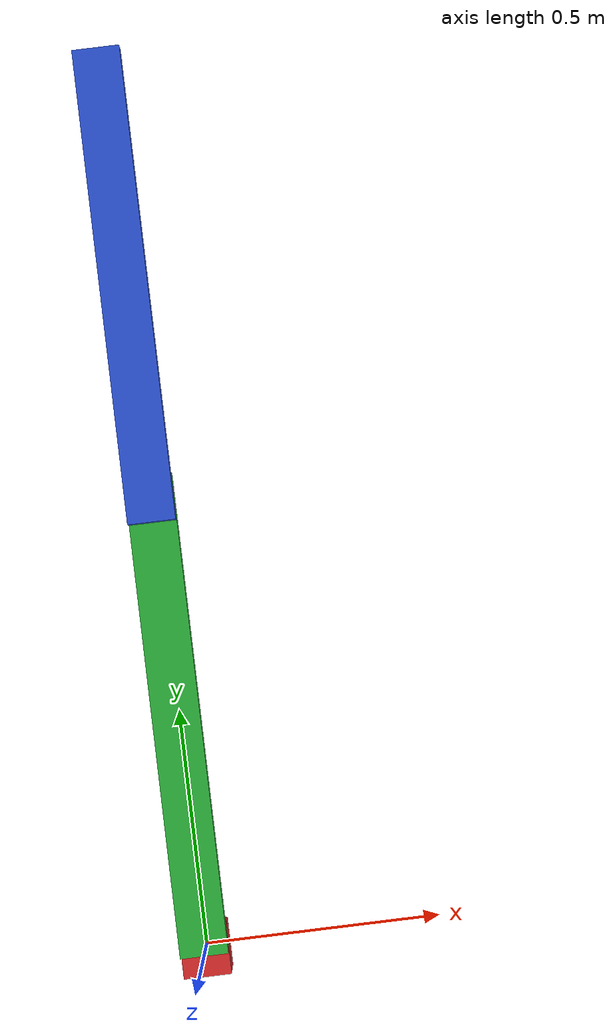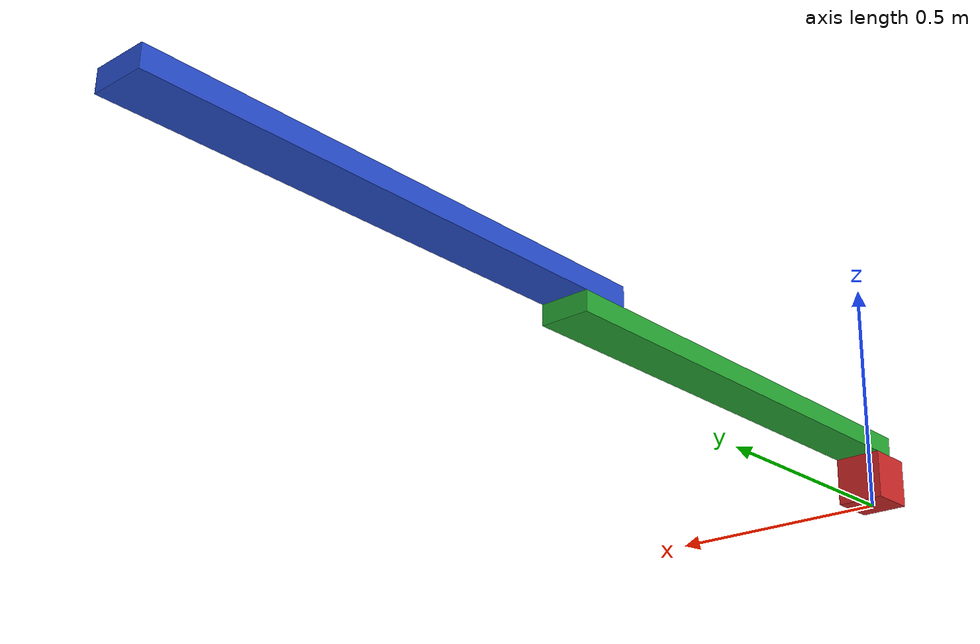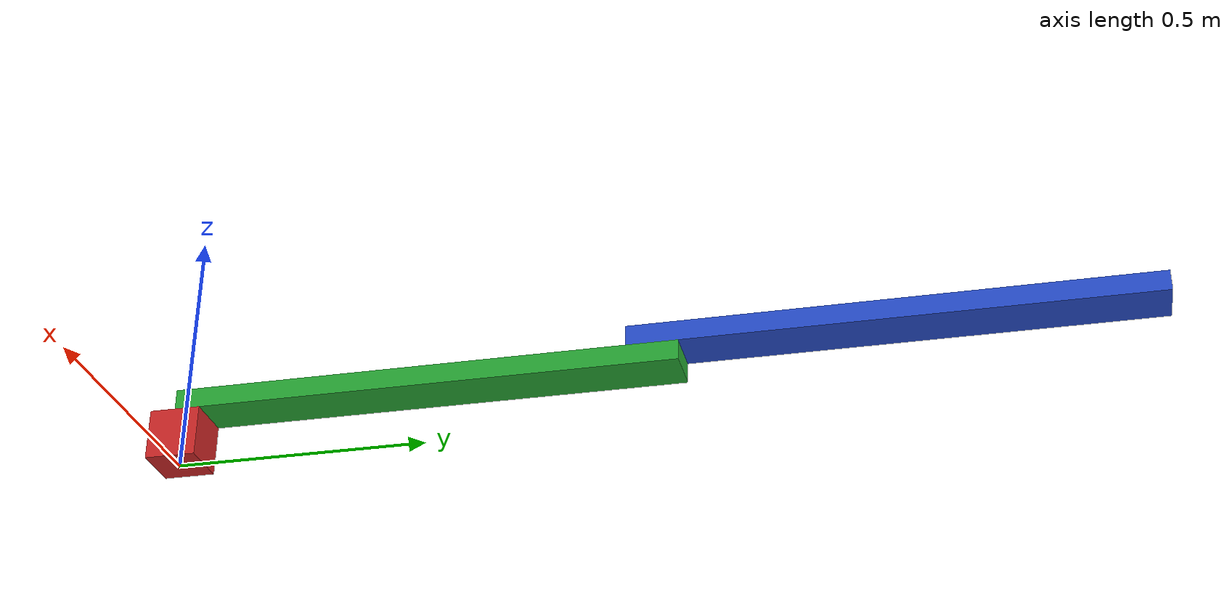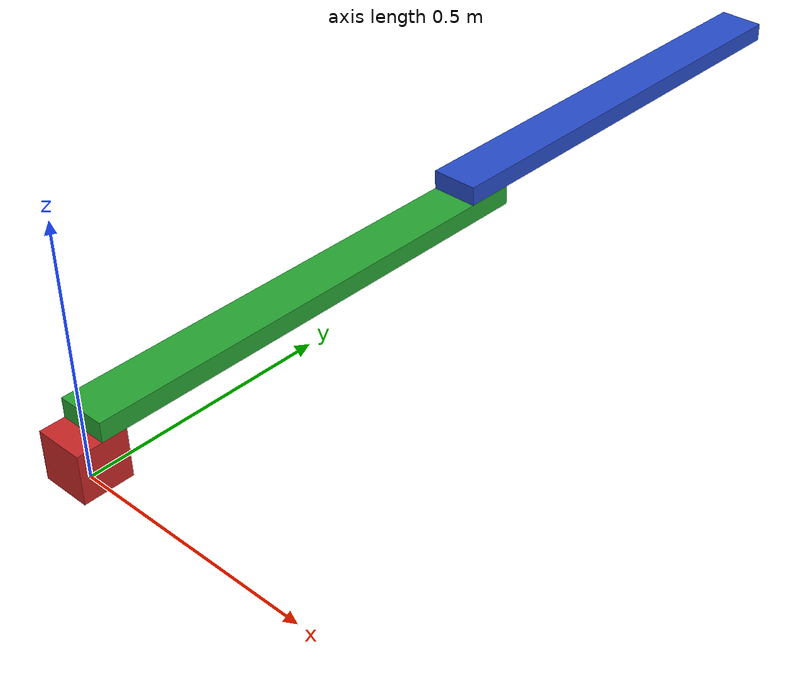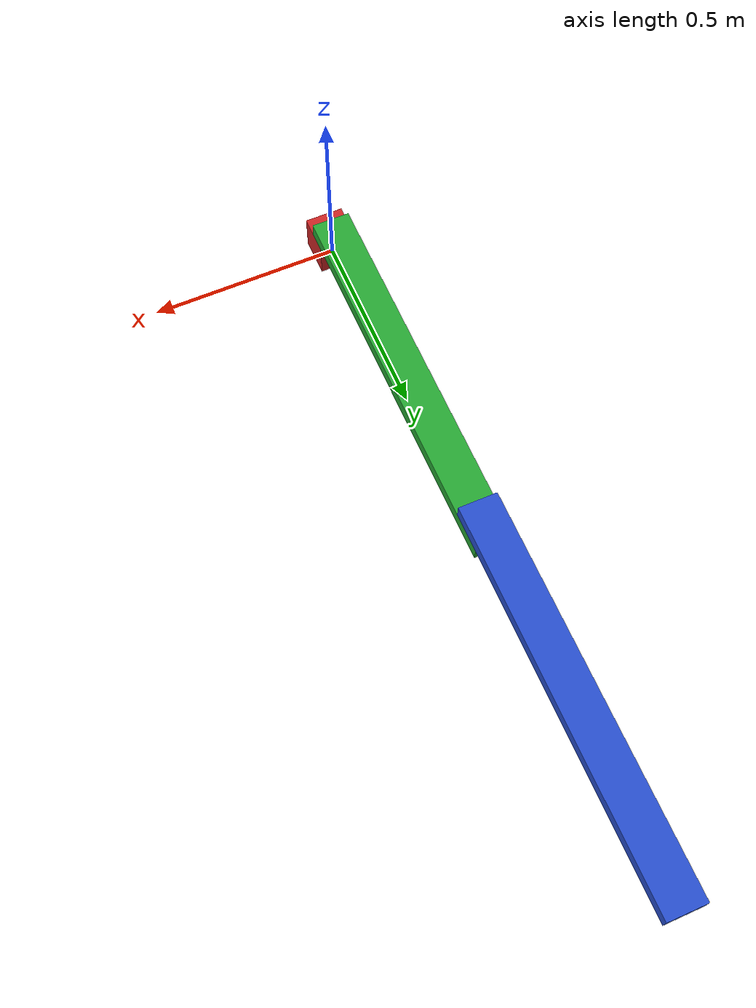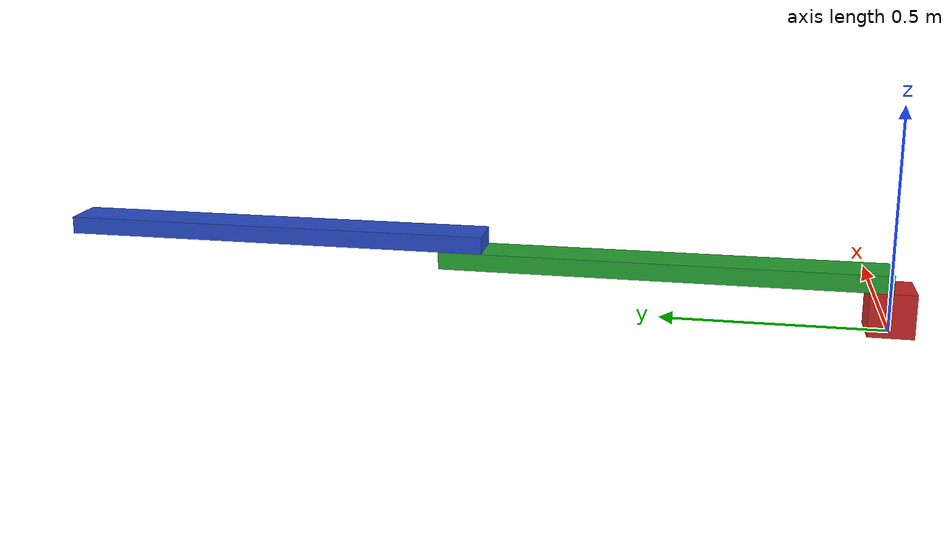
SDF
<sdf version='1.6'>
  <model name='rrbot'>
    <link name='base_link'>
      <pose frame=''>0 0 0 0 -0 0</pose>
      <inertial>
        <pose frame=''>0 0 0.05 0 -0 0</pose>
        <mass>1</mass>
        <inertia>
          <ixx>1</ixx>
          <ixy>0</ixy>
          <ixz>0</ixz>
          <iyy>1</iyy>
          <iyz>0</iyz>
          <izz>1</izz>
        </inertia>
      </inertial>
      <collision name='base_link_collision'>
        <pose frame=''>0 0 0.05 0 -0 0</pose>
        <geometry>
          <box>
            <size>0.1 0.1 0.1</size>
          </box>
        </geometry>
        <surface>
          <contact>
            <ode/>
          </contact>
          <friction>
            <ode/>
          </friction>
        </surface>
      </collision>
      <visual name='base_link_visual'>
        <pose frame=''>0 0 0.05 0 -0 0</pose>
        <geometry>
          <box>
            <size>0.1 0.1 0.1</size>
          </box>
        </geometry>
        <material>
          <script>
            <name>Gazebo/Red</name>
            <uri>file://media/materials/scripts/gazebo.material</uri>
          </script>
        </material>
      </visual>
      <gravity>1</gravity>
      <velocity_decay/>
    </link>
    <joint name='fixed' type='fixed'>
      <child>base_link</child>
      <parent>world</parent>
    </joint>
    <link name='mid_link'>
      <pose frame=''>0 0.05 0.12 -1.5708 0 0</pose>
      <inertial>
        <pose frame=''>0 0 0.45 0 -0 0</pose>
        <mass>1</mass>
        <inertia>
          <ixx>1</ixx>
          <ixy>0</ixy>
          <ixz>0</ixz>
          <iyy>1</iyy>
          <iyz>0</iyz>
          <izz>1</izz>
        </inertia>
      </inertial>
      <collision name='mid_link_collision'>
        <pose frame=''>0 0 0.45 0 -0 0</pose>
        <geometry>
          <box>
            <size>0.1 0.1 1</size>
          </box>
        </geometry>
        <surface>
          <contact>
            <ode/>
          </contact>
          <friction>
            <ode>
              <mu>0.2</mu>
              <mu2>0.2</mu2>
            </ode>
          </friction>
        </surface>
      </collision>
      <visual name='mid_link_visual'>
        <pose frame=''>0 0 0.45 0 -0 0</pose>
        <geometry>
          <box>
            <size>0.1 0.04 1</size>
          </box>
        </geometry>
        <material>
          <script>
            <name>Gazebo/Green</name>
            <uri>file://media/materials/scripts/gazebo.material</uri>
          </script>
        </material>
      </visual>
      <gravity>1</gravity>
      <velocity_decay/>
    </link>
    <joint name='joint_base_mid' type='revolute'>
      <child>mid_link</child>
      <parent>base_link</parent>
      <axis>
        <xyz>0 1 0</xyz>
        <limit>
          <lower>-3.14</lower>
          <upper>3.14</upper>
          <effort>100</effort>
          <velocity>0.5</velocity>
        </limit>
        <dynamics>
          <damping>0.7</damping>
          <friction>0</friction>
          <spring_reference>0</spring_reference>
          <spring_stiffness>0</spring_stiffness>
        </dynamics>
        <use_parent_model_frame>0</use_parent_model_frame>
      </axis>
    </joint>
    <link name='top_link'>
      <pose frame=''>0 0.95 0.16 -1.5708 0 0</pose>
      <inertial>
        <pose frame=''>0 0 0.45 0 -0 0</pose>
        <mass>1</mass>
        <inertia>
          <ixx>1</ixx>
          <ixy>0</ixy>
          <ixz>0</ixz>
          <iyy>1</iyy>
          <iyz>0</iyz>
          <izz>1</izz>
        </inertia>
      </inertial>
      <collision name='top_link_collision'>
        <pose frame=''>0 0 0.45 0 -0 0</pose>
        <geometry>
          <box>
            <size>0.1 0.1 1</size>
          </box>
        </geometry>
        <surface>
          <contact>
            <ode/>
          </contact>
          <friction>
            <ode>
              <mu>0.2</mu>
              <mu2>0.2</mu2>
            </ode>
          </friction>
        </surface>
      </collision>
      <visual name='top_link_visual'>
        <pose frame=''>0 0 0.45 0 -0 0</pose>
        <geometry>
          <box>
            <size>0.1 0.04 1</size>
          </box>
        </geometry>
        <material>
          <script>
            <name>Gazebo/Blue</name>
            <uri>file://media/materials/scripts/gazebo.material</uri>
          </script>
        </material>
      </visual>
      <gravity>1</gravity>
      <velocity_decay/>
    </link>
    <joint name='joint_mid_top' type='revolute'>
      <child>top_link</child>
      <parent>mid_link</parent>
      <axis>
        <xyz>0 1 0</xyz>
        <limit>
          <lower>-3.14</lower>
          <upper>3.14</upper>
          <effort>100</effort>
          <velocity>0.5</velocity>
        </limit>
        <dynamics>
          <damping>0.7</damping>
          <friction>0</friction>
          <spring_reference>0</spring_reference>
          <spring_stiffness>0</spring_stiffness>
        </dynamics>
        <use_parent_model_frame>0</use_parent_model_frame>
      </axis>
    </joint>
    <static>0</static>
    <plugin name='gazebo_ros2_control' filename='libgazebo_ros2_control.so'>
      <robotNamespace>/rrbot</robotNamespace>
      <robotSimType>gazebo_ros2_control/DefaultRobotHWSim</robotSimType>
    </plugin>
  </model>
</sdf>
